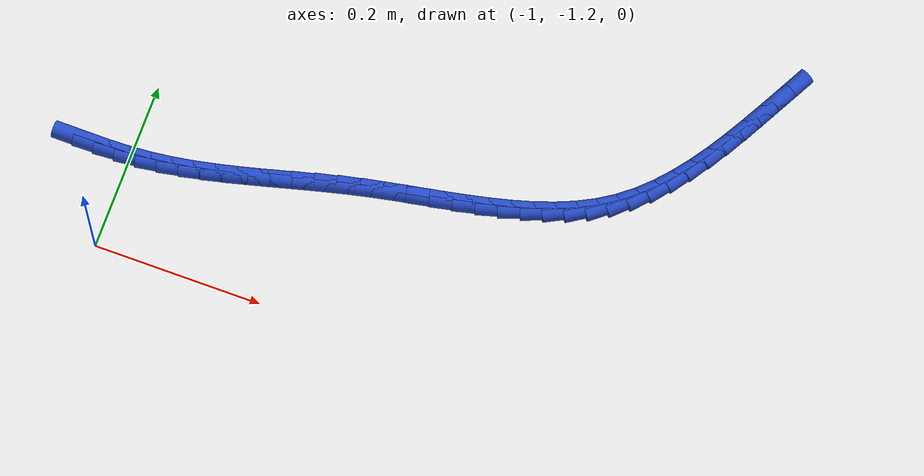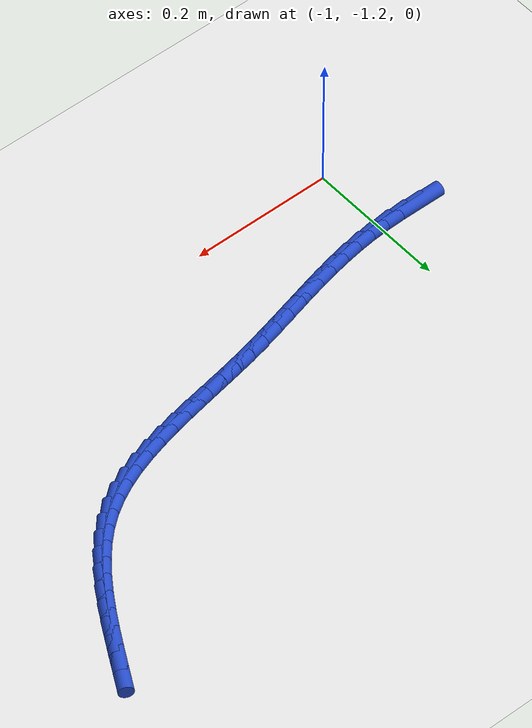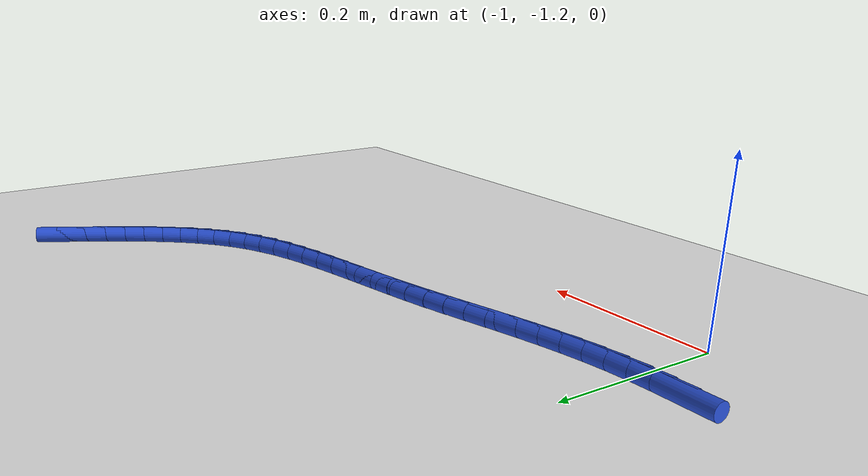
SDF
<sdf version="1.6">
 <world name="default">
  <model name="ground_plane">
   <static>1</static>
   <link name="link">
    <collision name="collision">
     <geometry><plane><normal>0 0 1</normal><size>100 100</size></plane></geometry>
     <surface><friction><ode><mu>100</mu><mu2>50</mu2></ode></friction></surface>
    </collision>
    <visual name="visual">
     <cast_shadows>0</cast_shadows>
     <geometry><plane><normal>0 0 1</normal><size>100 100</size></plane></geometry>
     <material>
      <script><uri>file://media/materials/scripts/gazebo.material</uri><name>Gazebo/WhiteGlow</name></script>
     </material>
    </visual>
   </link>
  </model>
  <model name="line">
   <link name="link_204">
    <pose>-1.0533338370329073 -1.0891078902616245 0.01 0 1.57 -0.0049269379403003325</pose>
    <collision name="collision">
     <geometry><cylinder><radius>0.01</radius><length>0.08</length></cylinder></geometry>
    </collision>
    <visual name="visual">
     <material>
      <script><name>Gazebo/Blue</name><uri>file://media/materials/scripts/gazebo.material</uri></script>
     </material>
     <geometry><cylinder><radius>0.01</radius><length>0.08</length></cylinder></geometry>
    </visual>
   </link>
   <link name="link_205">
    <pose>-1.0279794918904954 -1.0892328105574614 0.01 0 1.57 0.0274131365396755</pose>
    <collision name="collision">
     <geometry><cylinder><radius>0.01</radius><length>0.08</length></cylinder></geometry>
    </collision>
    <visual name="visual">
     <material>
      <script><name>Gazebo/Blue</name><uri>file://media/materials/scripts/gazebo.material</uri></script>
     </material>
     <geometry><cylinder><radius>0.01</radius><length>0.08</length></cylinder></geometry>
    </visual>
   </link>
   <link name="link_206">
    <pose>-1.002802425889579 -1.0885424552714362 0.01 0 1.57 0.07058058652347958</pose>
    <collision name="collision">
     <geometry><cylinder><radius>0.01</radius><length>0.08</length></cylinder></geometry>
    </collision>
    <visual name="visual">
     <material>
      <script><name>Gazebo/Blue</name><uri>file://media/materials/scripts/gazebo.material</uri></script>
     </material>
     <geometry><cylinder><radius>0.01</radius><length>0.08</length></cylinder></geometry>
    </visual>
   </link>
   <link name="link_207">
    <pose>-0.9777934477734412 -1.0867743699762415 0.01 0 1.57 0.11966026248641107</pose>
    <collision name="collision">
     <geometry><cylinder><radius>0.01</radius><length>0.08</length></cylinder></geometry>
    </collision>
    <visual name="visual">
     <material>
      <script><name>Gazebo/Blue</name><uri>file://media/materials/scripts/gazebo.material</uri></script>
     </material>
     <geometry><cylinder><radius>0.01</radius><length>0.08</length></cylinder></geometry>
    </visual>
   </link>
   <link name="link_208">
    <pose>-0.9529316135034731 -1.0837851154319809 0.01 0 1.57 0.16261432003169046</pose>
    <collision name="collision">
     <geometry><cylinder><radius>0.01</radius><length>0.08</length></cylinder></geometry>
    </collision>
    <visual name="visual">
     <material>
      <script><name>Gazebo/Blue</name><uri>file://media/materials/scripts/gazebo.material</uri></script>
     </material>
     <geometry><cylinder><radius>0.01</radius><length>0.08</length></cylinder></geometry>
    </visual>
   </link>
   <link name="link_209">
    <pose>-0.928167247964571 -1.0797221992131338 0.01 0 1.57 0.1974446502954046</pose>
    <collision name="collision">
     <geometry><cylinder><radius>0.01</radius><length>0.08</length></cylinder></geometry>
    </collision>
    <visual name="visual">
     <material>
      <script><name>Gazebo/Blue</name><uri>file://media/materials/scripts/gazebo.material</uri></script>
     </material>
     <geometry><cylinder><radius>0.01</radius><length>0.08</length></cylinder></geometry>
    </visual>
   </link>
   <link name="link_210">
    <pose>-0.9034463673615024 -1.0747767609787233 0.01 0 1.57 0.22409371001747713</pose>
    <collision name="collision">
     <geometry><cylinder><radius>0.01</radius><length>0.08</length></cylinder></geometry>
    </collision>
    <visual name="visual">
     <material>
      <script><name>Gazebo/Blue</name><uri>file://media/materials/scripts/gazebo.material</uri></script>
     </material>
     <geometry><cylinder><radius>0.01</radius><length>0.08</length></cylinder></geometry>
    </visual>
   </link>
   <link name="link_211">
    <pose>-0.878714987899033 -1.0691399403877706 0.01 0 1.57 0.24262766327989724</pose>
    <collision name="collision">
     <geometry><cylinder><radius>0.01</radius><length>0.08</length></cylinder></geometry>
    </collision>
    <visual name="visual">
     <material>
      <script><name>Gazebo/Blue</name><uri>file://media/materials/scripts/gazebo.material</uri></script>
     </material>
     <geometry><cylinder><radius>0.01</radius><length>0.08</length></cylinder></geometry>
    </visual>
   </link>
   <link name="link_212">
    <pose>-0.8539191257819304 -1.0630028770992994 0.01 0 1.57 0.2531811953787583</pose>
    <collision name="collision">
     <geometry><cylinder><radius>0.01</radius><length>0.08</length></cylinder></geometry>
    </collision>
    <visual name="visual">
     <material>
      <script><name>Gazebo/Blue</name><uri>file://media/materials/scripts/gazebo.material</uri></script>
     </material>
     <geometry><cylinder><radius>0.01</radius><length>0.08</length></cylinder></geometry>
    </visual>
   </link>
   <link name="link_213">
    <pose>-0.8290047972149602 -1.0565567107723313 0.01 0 1.57 0.25591945182368</pose>
    <collision name="collision">
     <geometry><cylinder><radius>0.01</radius><length>0.08</length></cylinder></geometry>
    </collision>
    <visual name="visual">
     <material>
      <script><name>Gazebo/Blue</name><uri>file://media/materials/scripts/gazebo.material</uri></script>
     </material>
     <geometry><cylinder><radius>0.01</radius><length>0.08</length></cylinder></geometry>
    </visual>
   </link>
   <link name="link_214">
    <pose>-0.8039180184028902 -1.0499925810658897 0.01 0 1.57 0.25101699590016674</pose>
    <collision name="collision">
     <geometry><cylinder><radius>0.01</radius><length>0.08</length></cylinder></geometry>
    </collision>
    <visual name="visual">
     <material>
      <script><name>Gazebo/Blue</name><uri>file://media/materials/scripts/gazebo.material</uri></script>
     </material>
     <geometry><cylinder><radius>0.01</radius><length>0.08</length></cylinder></geometry>
    </visual>
   </link>
   <link name="link_215">
    <pose>-0.7786048055504862 -1.0435016276389961 0.01 0 1.57 0.23865210486304417</pose>
    <collision name="collision">
     <geometry><cylinder><radius>0.01</radius><length>0.08</length></cylinder></geometry>
    </collision>
    <visual name="visual">
     <material>
      <script><name>Gazebo/Blue</name><uri>file://media/materials/scripts/gazebo.material</uri></script>
     </material>
     <geometry><cylinder><radius>0.01</radius><length>0.08</length></cylinder></geometry>
    </visual>
   </link>
   <link name="link_216">
    <pose>-0.753011174862514 -1.0372749901506737 0.01 0 1.57 0.21906252335229104</pose>
    <collision name="collision">
     <geometry><cylinder><radius>0.01</radius><length>0.08</length></cylinder></geometry>
    </collision>
    <visual name="visual">
     <material>
      <script><name>Gazebo/Blue</name><uri>file://media/materials/scripts/gazebo.material</uri></script>
     </material>
     <geometry><cylinder><radius>0.01</radius><length>0.08</length></cylinder></geometry>
    </visual>
   </link>
   <link name="link_217">
    <pose>-0.7270837562437446 -1.031502632260118 0.01 0 1.57 0.19797876255354951</pose>
    <collision name="collision">
     <geometry><cylinder><radius>0.01</radius><length>0.08</length></cylinder></geometry>
    </collision>
    <visual name="visual">
     <material>
      <script><name>Gazebo/Blue</name><uri>file://media/materials/scripts/gazebo.material</uri></script>
     </material>
     <geometry><cylinder><radius>0.01</radius><length>0.08</length></cylinder></geometry>
    </visual>
   </link>
   <link name="link_218">
    <pose>-0.700840400051902 -1.0262380417589774 0.01 0 1.57 0.18587588103854222</pose>
    <collision name="collision">
     <geometry><cylinder><radius>0.01</radius><length>0.08</length></cylinder></geometry>
    </collision>
    <visual name="visual">
     <material>
      <script><name>Gazebo/Blue</name><uri>file://media/materials/scripts/gazebo.material</uri></script>
     </material>
     <geometry><cylinder><radius>0.01</radius><length>0.08</length></cylinder></geometry>
    </visual>
   </link>
   <link name="link_219">
    <pose>-0.6744356731376789 -1.021272724083953 0.01 0 1.57 0.18369894884426424</pose>
    <collision name="collision">
     <geometry><cylinder><radius>0.01</radius><length>0.08</length></cylinder></geometry>
    </collision>
    <visual name="visual">
     <material>
      <script><name>Gazebo/Blue</name><uri>file://media/materials/scripts/gazebo.material</uri></script>
     </material>
     <geometry><cylinder><radius>0.01</radius><length>0.08</length></cylinder></geometry>
    </visual>
   </link>
   <link name="link_220">
    <pose>-0.6480396286069139 -1.0163685092060828 0.01 0 1.57 0.19144049011400305</pose>
    <collision name="collision">
     <geometry><cylinder><radius>0.01</radius><length>0.08</length></cylinder></geometry>
    </collision>
    <visual name="visual">
     <material>
      <script><name>Gazebo/Blue</name><uri>file://media/materials/scripts/gazebo.material</uri></script>
     </material>
     <geometry><cylinder><radius>0.01</radius><length>0.08</length></cylinder></geometry>
    </visual>
   </link>
   <link name="link_221">
    <pose>-0.621822319565447 -1.0112872270964035 0.01 0 1.57 0.20936537469014424</pose>
    <collision name="collision">
     <geometry><cylinder><radius>0.01</radius><length>0.08</length></cylinder></geometry>
    </collision>
    <visual name="visual">
     <material>
      <script><name>Gazebo/Blue</name><uri>file://media/materials/scripts/gazebo.material</uri></script>
     </material>
     <geometry><cylinder><radius>0.01</radius><length>0.08</length></cylinder></geometry>
    </visual>
   </link>
   <link name="link_222">
    <pose>-0.5959537991191154 -1.005790707725952 0.01 0 1.57 0.23800544675574062</pose>
    <collision name="collision">
     <geometry><cylinder><radius>0.01</radius><length>0.08</length></cylinder></geometry>
    </collision>
    <visual name="visual">
     <material>
      <script><name>Gazebo/Blue</name><uri>file://media/materials/scripts/gazebo.material</uri></script>
     </material>
     <geometry><cylinder><radius>0.01</radius><length>0.08</length></cylinder></geometry>
    </visual>
   </link>
   <link name="link_223">
    <pose>-0.5706041203737602 -0.999640781065766 0.01 0 1.57 0.2781334104124824</pose>
    <collision name="collision">
     <geometry><cylinder><radius>0.01</radius><length>0.08</length></cylinder></geometry>
    </collision>
    <visual name="visual">
     <material>
      <script><name>Gazebo/Blue</name><uri>file://media/materials/scripts/gazebo.material</uri></script>
     </material>
     <geometry><cylinder><radius>0.01</radius><length>0.08</length></cylinder></geometry>
    </visual>
   </link>
   <link name="link_224">
    <pose>-0.5459433364352188 -0.9925992770868827 0.01 0 1.57 0.3306966206460752</pose>
    <collision name="collision">
     <geometry><cylinder><radius>0.01</radius><length>0.08</length></cylinder></geometry>
    </collision>
    <visual name="visual">
     <material>
      <script><name>Gazebo/Blue</name><uri>file://media/materials/scripts/gazebo.material</uri></script>
     </material>
     <geometry><cylinder><radius>0.01</radius><length>0.08</length></cylinder></geometry>
    </visual>
   </link>
   <link name="link_225">
    <pose>-0.5221415004093317 -0.9844280257603393 0.01 0 1.57 0.3966786759790314</pose>
    <collision name="collision">
     <geometry><cylinder><radius>0.01</radius><length>0.08</length></cylinder></geometry>
    </collision>
    <visual name="visual">
     <material>
      <script><name>Gazebo/Blue</name><uri>file://media/materials/scripts/gazebo.material</uri></script>
     </material>
     <geometry><cylinder><radius>0.01</radius><length>0.08</length></cylinder></geometry>
    </visual>
   </link>
   <link name="link_226">
    <pose>-0.4993686654019374 -0.974888857057173 0.01 0 1.57 0.4768480603939583</pose>
    <collision name="collision">
     <geometry><cylinder><radius>0.01</radius><length>0.08</length></cylinder></geometry>
    </collision>
    <visual name="visual">
     <material>
      <script><name>Gazebo/Blue</name><uri>file://media/materials/scripts/gazebo.material</uri></script>
     </material>
     <geometry><cylinder><radius>0.01</radius><length>0.08</length></cylinder></geometry>
    </visual>
   </link>
   <link name="link_227">
    <pose>-0.4777948845188741 -0.9637436009484207 0.01 0 1.57 0.5713550280580392</pose>
    <collision name="collision">
     <geometry><cylinder><radius>0.01</radius><length>0.08</length></cylinder></geometry>
    </collision>
    <visual name="visual">
     <material>
      <script><name>Gazebo/Blue</name><uri>file://media/materials/scripts/gazebo.material</uri></script>
     </material>
     <geometry><cylinder><radius>0.01</radius><length>0.08</length></cylinder></geometry>
    </visual>
   </link>
   <link name="link_228">
    <pose>-0.4575900623264965 -0.9507542855906533 0.01 0 1.57 0.6735506147504459</pose>
    <collision name="collision">
     <geometry><cylinder><radius>0.01</radius><length>0.08</length></cylinder></geometry>
    </collision>
    <visual name="visual">
     <material>
      <script><name>Gazebo/Blue</name><uri>file://media/materials/scripts/gazebo.material</uri></script>
     </material>
     <geometry><cylinder><radius>0.01</radius><length>0.08</length></cylinder></geometry>
    </visual>
   </link>
   <link name="link_229">
    <pose>-0.4388420394243609 -0.9357924311780254 0.01 0 1.57 0.7664015288724102</pose>
    <collision name="collision">
     <geometry><cylinder><radius>0.01</radius><length>0.08</length></cylinder></geometry>
    </collision>
    <visual name="visual">
     <material>
      <script><name>Gazebo/Blue</name><uri>file://media/materials/scripts/gazebo.material</uri></script>
     </material>
     <geometry><cylinder><radius>0.01</radius><length>0.08</length></cylinder></geometry>
    </visual>
   </link>
   <link name="link_230">
    <pose>-0.42142054270634305 -0.9190205713054984 0.01 0 1.57 0.8462608941893724</pose>
    <collision name="collision">
     <geometry><cylinder><radius>0.01</radius><length>0.08</length></cylinder></geometry>
    </collision>
    <visual name="visual">
     <material>
      <script><name>Gazebo/Blue</name><uri>file://media/materials/scripts/gazebo.material</uri></script>
     </material>
     <geometry><cylinder><radius>0.01</radius><length>0.08</length></cylinder></geometry>
    </visual>
   </link>
   <link name="link_231">
    <pose>-0.4051594640642888 -0.9006490516290642 0.01 0 1.57 0.9130017251843063</pose>
    <collision name="collision">
     <geometry><cylinder><radius>0.01</radius><length>0.08</length></cylinder></geometry>
    </collision>
    <visual name="visual">
     <material>
      <script><name>Gazebo/Blue</name><uri>file://media/materials/scripts/gazebo.material</uri></script>
     </material>
     <geometry><cylinder><radius>0.01</radius><length>0.08</length></cylinder></geometry>
    </visual>
   </link>
   <link name="link_232">
    <pose>-0.38989269539004584 -0.8808882178047166 0.01 0 1.57 0.967133607777576</pose>
    <collision name="collision">
     <geometry><cylinder><radius>0.01</radius><length>0.08</length></cylinder></geometry>
    </collision>
    <visual name="visual">
     <material>
      <script><name>Gazebo/Blue</name><uri>file://media/materials/scripts/gazebo.material</uri></script>
     </material>
     <geometry><cylinder><radius>0.01</radius><length>0.08</length></cylinder></geometry>
    </visual>
   </link>
   <link name="link_233">
    <pose>-0.3754541285754599 -0.8599484154884467 0.01 0 1.57 1.0094541988167745</pose>
    <collision name="collision">
     <geometry><cylinder><radius>0.01</radius><length>0.08</length></cylinder></geometry>
    </collision>
    <visual name="visual">
     <material>
      <script><name>Gazebo/Blue</name><uri>file://media/materials/scripts/gazebo.material</uri></script>
     </material>
     <geometry><cylinder><radius>0.01</radius><length>0.08</length></cylinder></geometry>
    </visual>
   </link>
   <link name="link_234">
    <pose>-0.36167765551237874 -0.8380399903362484 0.01 0 1.57 1.0408068068438665</pose>
    <collision name="collision">
     <geometry><cylinder><radius>0.01</radius><length>0.08</length></cylinder></geometry>
    </collision>
    <visual name="visual">
     <material>
      <script><name>Gazebo/Blue</name><uri>file://media/materials/scripts/gazebo.material</uri></script>
     </material>
     <geometry><cylinder><radius>0.01</radius><length>0.08</length></cylinder></geometry>
    </visual>
   </link>
   <link name="link_235">
    <pose>-0.3483971680926485 -0.8153732880041134 0.01 0 1.57 1.0619355058182465</pose>
    <collision name="collision">
     <geometry><cylinder><radius>0.01</radius><length>0.08</length></cylinder></geometry>
    </collision>
    <visual name="visual">
     <material>
      <script><name>Gazebo/Blue</name><uri>file://media/materials/scripts/gazebo.material</uri></script>
     </material>
     <geometry><cylinder><radius>0.01</radius><length>0.08</length></cylinder></geometry>
    </visual>
   </link>
   <link name="link_236">
    <pose>-0.3354465582081157 -0.7921586541480334 0.01 0 1.57 1.073409347125349</pose>
    <collision name="collision">
     <geometry><cylinder><radius>0.01</radius><length>0.08</length></cylinder></geometry>
    </collision>
    <visual name="visual">
     <material>
      <script><name>Gazebo/Blue</name><uri>file://media/materials/scripts/gazebo.material</uri></script>
     </material>
     <geometry><cylinder><radius>0.01</radius><length>0.08</length></cylinder></geometry>
    </visual>
   </link>
   <link name="link_237">
    <pose>-0.32265971775062785 -0.7686064344240027 0.01 0 1.57 1.075588820155849</pose>
    <collision name="collision">
     <geometry><cylinder><radius>0.01</radius><length>0.08</length></cylinder></geometry>
    </collision>
    <visual name="visual">
     <material>
      <script><name>Gazebo/Blue</name><uri>file://media/materials/scripts/gazebo.material</uri></script>
     </material>
     <geometry><cylinder><radius>0.01</radius><length>0.08</length></cylinder></geometry>
    </visual>
   </link>
  </model>
 </world>
</sdf>
